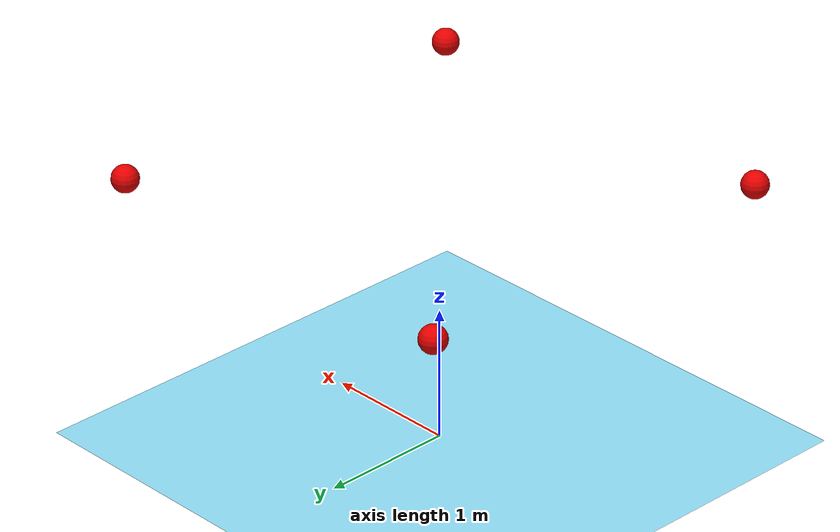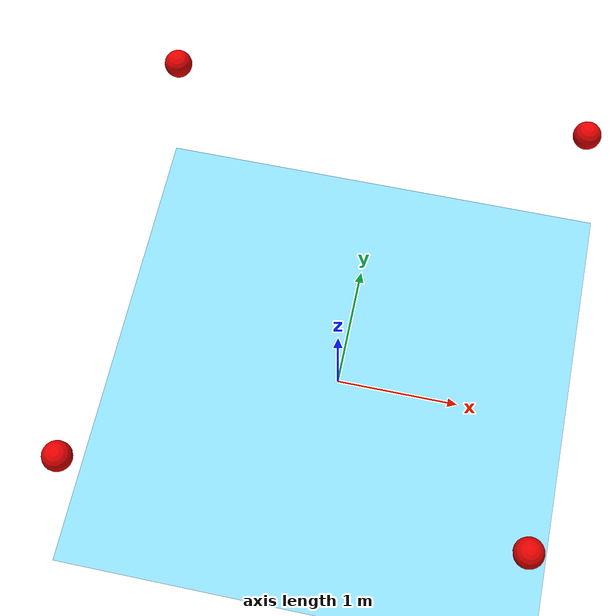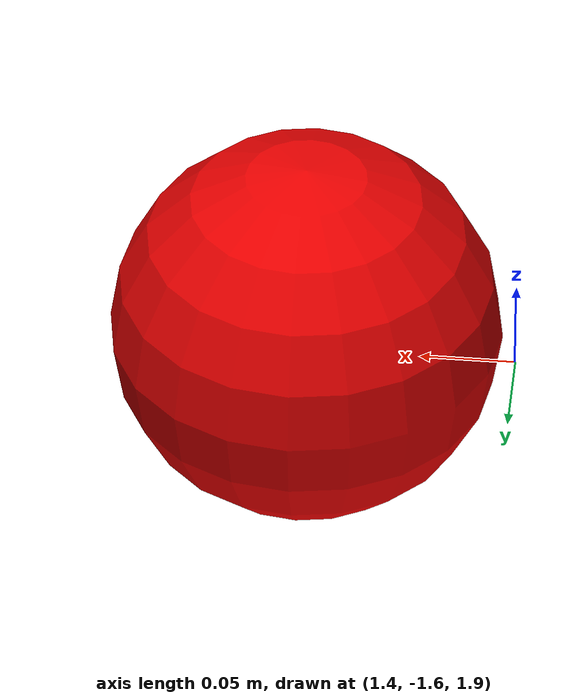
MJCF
<mujoco>

  <compiler angle="radian" coordinate="local" inertiafromgeom="true"/>

  <default>
    <joint armature="0" damping="1" limited="false"/>
    <geom friction="0.5" solimp="0.99 0.99 0.01" solref="0.01 0.5"/>
  </default>

  <option gravity="0 0 -9.8" timestep="0.01"/>

  <asset>
    <!-- Define the textures -->
    <texture name="texplane" type="2d" builtin="checker" rgb1=".5 .8 .9" rgb2=".6 .9 1" width="512" height="512"/>
    <material name="MatPlane" texture="texplane" texrepeat="10 10" texuniform="true"/>

    <texture name="ball_texture" type="cube" builtin="checker" rgb1="1 0 0" rgb2="0.8 0 0" width="300" height="300"/>
    <material name="MatBall" texture="ball_texture" texrepeat="8 8"/>
  </asset>

  <worldbody>

    <!-- Light sources -->
    <light diffuse=".5 .5 .5" dir="0 0 -1" pos="0 0 3"/>

    <!-- Ground with light blue color -->
    <geom condim="3" material="MatPlane" name="ground" pos="0 0 0" size="5 5 0.1" type="plane" solref="0.001 1.0" />

    <!-- Ball 1 setup -->
    <body name="ball1" pos="-1.5 -1.5 2">
      <joint name="ball_joint1" type="free" damping="0.001"/>
      <geom name="ball_geom1" size="0.1" type="sphere" material="MatBall" density="50" solref="0.001 1.0"/>
    </body>

    <!-- Ball 2 setup -->
    <body name="ball2" pos="1.5 -1.5 2">
      <joint name="ball_joint2" type="free" damping="0.001"/>
      <geom name="ball_geom2" size="0.1" type="sphere" material="MatBall" density="50" solref="0.001 1.0"/>
    </body>

    <!-- Ball 3 setup -->
    <body name="ball3" pos="-1.5 1.5 2">
      <joint name="ball_joint3" type="free" damping="0.001"/>
      <geom name="ball_geom3" size="0.1" type="sphere" material="MatBall" density="50" solref="0.001 1.0"/>
    </body>

    <!-- Ball 4 setup -->
    <body name="ball4" pos="1.5 1.5 2">
      <joint name="ball_joint4" type="free" damping="0.001"/>
      <geom name="ball_geom4" size="0.1" type="sphere" material="MatBall" density="50" solref="0.001 1.0"/>
    </body>

  </worldbody>

</mujoco>
